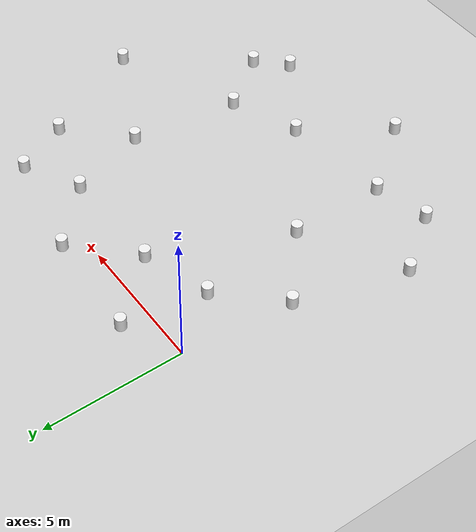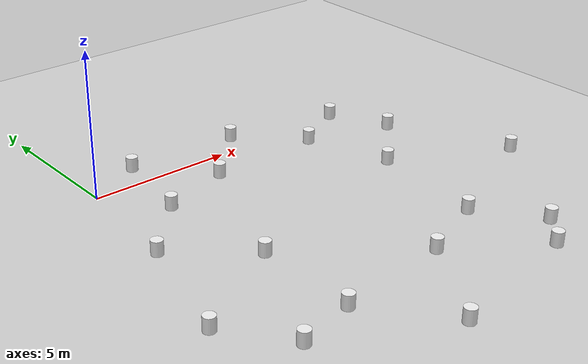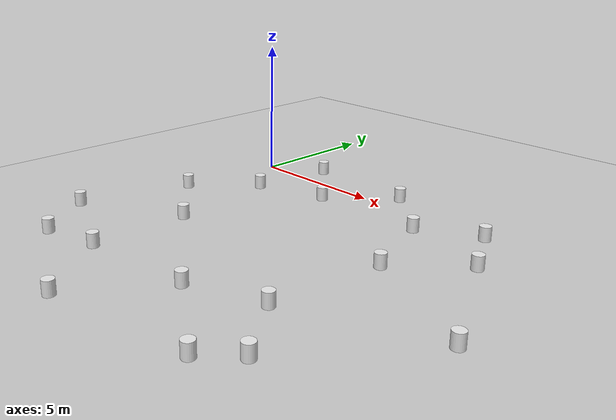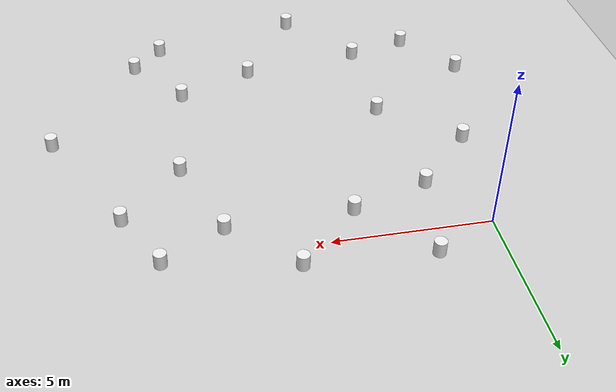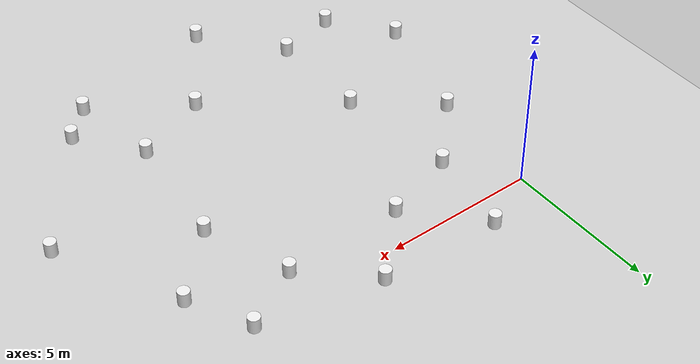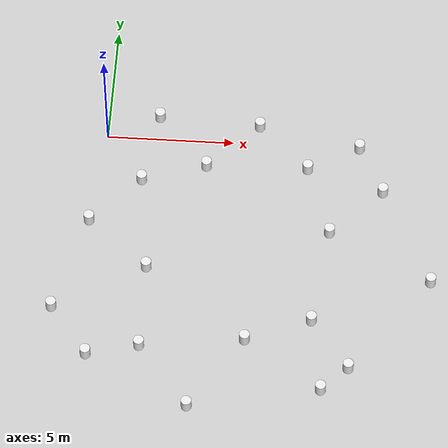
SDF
<?xml version="1.0"?>
<sdf version="1.6">
  <world name="default">

    <include>
      <uri>model://ground_plane</uri>
    </include>

    <include>
      <uri>model://sun</uri>
    </include>

    <scene>
      <shadows>false</shadows>
    </scene>

    <gui fullscreen='0'>
      <camera name='user_camera'>
        <pose frame=''>8 0 15 0 1.57 1.57</pose>
        <view_controller>orbit</view_controller>
        <projection_type>orthographic</projection_type>
      </camera>
    </gui>

    <physics type="ode">
      <real_time_update_rate>1000.0</real_time_update_rate>
      <max_step_size>0.001</max_step_size>
      <real_time_factor>1</real_time_factor>
      <ode>
        <solver>
          <type>quick</type>
          <iters>150</iters>
          <precon_iters>0</precon_iters>
          <sor>1.400000</sor>
          <use_dynamic_moi_rescaling>1</use_dynamic_moi_rescaling>
        </solver>
        <constraints>
          <cfm>0.00001</cfm>
          <erp>0.2</erp>
          <contact_max_correcting_vel>2000.000000</contact_max_correcting_vel>
          <contact_surface_layer>0.01000</contact_surface_layer>
        </constraints>
      </ode>
    </physics>

    <model name="turtlebot3_world">
      <static>1</static>
      <include>
        <uri>model://turtlebot3_world</uri>
      </include>
    </model>

  </world>
</sdf>

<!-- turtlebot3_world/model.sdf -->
<sdf version='1.5'>
    <!-- Draw Circle -->
    <model name='ros_symbol'>
      <static>1</static>
      <link name='symbol'>
        <collision name='c1'>
          <pose>2.0 1.0 0.25 0 0 0</pose>
          <geometry>
            <cylinder>
              <radius>0.2</radius>
              <length>0.5</length>
            </cylinder>
          </geometry>
          <max_contacts>10</max_contacts>
          <surface>
            <bounce/>
            <friction>
              <ode/>
            </friction>
            <contact>
              <ode/>
            </contact>
          </surface>
        </collision>

        <visual name='c1'>
          <pose>2.0 1.0 0.25 0 0 0</pose>
          <geometry>
            <cylinder>
              <radius>0.2</radius>
              <length>0.5</length>
            </cylinder>
          </geometry>
          <material>
            <script>
              <uri>file://media/materials/scripts/gazebo.material</uri>
              <name>Gazebo/White</name>
            </script>
          </material>
        </visual>

        <collision name='c2'>
          <pose>4.0 -1.2 0.25 0 0 0</pose>
          <geometry>
            <cylinder>
              <radius>0.2</radius>
              <length>0.5</length>
            </cylinder>
          </geometry>
          <max_contacts>10</max_contacts>
          <surface>
            <bounce/>
            <friction>
              <ode/>
            </friction>
            <contact>
              <ode/>
            </contact>
          </surface>
        </collision>

        <visual name='c2'>
          <pose>4.0 -1.2 0.25 0 0 0</pose>
          <geometry>
            <cylinder>
              <radius>0.2</radius>
              <length>0.5</length>
            </cylinder>
          </geometry>
          <material>
            <script>
              <uri>file://media/materials/scripts/gazebo.material</uri>
              <name>Gazebo/White</name>
            </script>
          </material>
        </visual>

        <collision name='c3'>
          <pose>6 0.8 0.25 0 0 0</pose>
          <geometry>
            <cylinder>
              <radius>0.2</radius>
              <length>0.5</length>
            </cylinder>
          </geometry>
          <max_contacts>10</max_contacts>
          <surface>
            <bounce/>
            <friction>
              <ode/>
            </friction>
            <contact>
              <ode/>
            </contact>
          </surface>
        </collision>

        <visual name='c3'>
          <pose>6 0.8 0.25 0 0 0</pose>
          <geometry>
            <cylinder>
              <radius>0.2</radius>
              <length>0.5</length>
            </cylinder>
          </geometry>
          <material>
            <script>
              <uri>file://media/materials/scripts/gazebo.material</uri>
              <name>Gazebo/White</name>
            </script>
          </material>
        </visual>

        <collision name='c4'>
          <pose>8 -1.1 0.25 0 0 0</pose>
          <geometry>
            <cylinder>
              <radius>0.2</radius>
              <length>0.5</length>
            </cylinder>
          </geometry>
          <max_contacts>10</max_contacts>
          <surface>
            <bounce/>
            <friction>
              <ode/>
            </friction>
            <contact>
              <ode/>
            </contact>
          </surface>
        </collision>

        <visual name='c4'>
          <pose>8 -1.1 0.25 0 0 0</pose>
          <geometry>
            <cylinder>
              <radius>0.2</radius>
              <length>0.5</length>
            </cylinder>
          </geometry>
          <material>
            <script>
              <uri>file://media/materials/scripts/gazebo.material</uri>
              <name>Gazebo/White</name>
            </script>
          </material>
        </visual>

        <collision name='c5'>
          <pose>10 0 0.25 0 0 0</pose>
          <geometry>
            <cylinder>
              <radius>0.2</radius>
              <length>0.5</length>
            </cylinder>
          </geometry>
          <max_contacts>10</max_contacts>
          <surface>
            <bounce/>
            <friction>
              <ode/>
            </friction>
            <contact>
              <ode/>
            </contact>
          </surface>
        </collision>

        <visual name='c5'>
          <pose>10 0 0.25 0 0 0</pose>
          <geometry>
            <cylinder>
              <radius>0.2</radius>
              <length>0.5</length>
            </cylinder>
          </geometry>
          <material>
            <script>
              <uri>file://media/materials/scripts/gazebo.material</uri>
              <name>Gazebo/White</name>
            </script>
          </material>
        </visual>

        <collision name='c7'>
          <pose>11 -2 0.25 0 0 0</pose>
          <geometry>
            <cylinder>
              <radius>0.2</radius>
              <length>0.5</length>
            </cylinder>
          </geometry>
          <max_contacts>10</max_contacts>
          <surface>
            <bounce/>
            <friction>
              <ode/>
            </friction>
            <contact>
              <ode/>
            </contact>
          </surface>
        </collision>

        <visual name='c7'>
          <pose>11 -2 0.25 0 0 0</pose>
          <geometry>
            <cylinder>
              <radius>0.2</radius>
              <length>0.5</length>
            </cylinder>
          </geometry>
          <material>
            <script>
              <uri>file://media/materials/scripts/gazebo.material</uri>
              <name>Gazebo/White</name>
            </script>
          </material>
        </visual>

        <collision name='c7_2'>
          <pose>9 -4 0.25 0 0 0</pose>
          <geometry>
            <cylinder>
              <radius>0.2</radius>
              <length>0.5</length>
            </cylinder>
          </geometry>
          <max_contacts>10</max_contacts>
          <surface>
            <bounce/>
            <friction>
              <ode/>
            </friction>
            <contact>
              <ode/>
            </contact>
          </surface>
        </collision>

        <visual name='c7_2'>
          <pose>9 -4 0.25 0 0 0</pose>
          <geometry>
            <cylinder>
              <radius>0.2</radius>
              <length>0.5</length>
            </cylinder>
          </geometry>
          <material>
            <script>
              <uri>file://media/materials/scripts/gazebo.material</uri>
              <name>Gazebo/White</name>
            </script>
          </material>
        </visual>

        <collision name='c8'>
          <pose>13 -6 0 0 0</pose>
          <geometry>
            <cylinder>
              <radius>0.2</radius>
              <length>0.5</length>
            </cylinder>
          </geometry>
          <max_contacts>10</max_contacts>
          <surface>
            <bounce/>
            <friction>
              <ode/>
            </friction>
            <contact>
              <ode/>
            </contact>
          </surface>
        </collision>

        <visual name='c8'>
          <pose>13 -6 0.25 0 0 0</pose>
          <geometry>
            <cylinder>
              <radius>0.2</radius>
              <length>0.5</length>
            </cylinder>
          </geometry>
          <material>
            <script>
              <uri>file://media/materials/scripts/gazebo.material</uri>
              <name>Gazebo/White</name>
            </script>
          </material>
        </visual>

        <collision name='c9'>
          <pose>8.5 -8 0 0 0</pose>
          <geometry>
            <cylinder>
              <radius>0.2</radius>
              <length>0.5</length>
            </cylinder>
          </geometry>
          <max_contacts>10</max_contacts>
          <surface>
            <bounce/>
            <friction>
              <ode/>
            </friction>
            <contact>
              <ode/>
            </contact>
          </surface>
        </collision>

        <visual name='c9'>
          <pose>8.5 -8 0.25 0 0 0</pose>
          <geometry>
            <cylinder>
              <radius>0.2</radius>
              <length>0.5</length>
            </cylinder>
          </geometry>
          <material>
            <script>
              <uri>file://media/materials/scripts/gazebo.material</uri>
              <name>Gazebo/White</name>
            </script>
          </material>
        </visual>

        <collision name='c10'>
          <pose>10 -10 0 0 0</pose>
          <geometry>
            <cylinder>
              <radius>0.2</radius>
              <length>0.5</length>
            </cylinder>
          </geometry>
          <max_contacts>10</max_contacts>
          <surface>
            <bounce/>
            <friction>
              <ode/>
            </friction>
            <contact>
              <ode/>
            </contact>
          </surface>
        </collision>

        <visual name='c10'>
          <pose>10 -10 0.25 0 0 0</pose>
          <geometry>
            <cylinder>
              <radius>0.2</radius>
              <length>0.5</length>
            </cylinder>
          </geometry>
          <material>
            <script>
              <uri>file://media/materials/scripts/gazebo.material</uri>
              <name>Gazebo/White</name>
            </script>
          </material>
        </visual>

        <collision name='c11'>
          <pose>8 -11 0 0 0</pose>
          <geometry>
            <cylinder>
              <radius>0.2</radius>
              <length>0.5</length>
            </cylinder>
          </geometry>
          <max_contacts>10</max_contacts>
          <surface>
            <bounce/>
            <friction>
              <ode/>
            </friction>
            <contact>
              <ode/>
            </contact>
          </surface>
        </collision>

        <visual name='c11'>
          <pose>9 -11 0.25 0 0 0</pose>
          <geometry>
            <cylinder>
              <radius>0.2</radius>
              <length>0.5</length>
            </cylinder>
          </geometry>
          <material>
            <script>
              <uri>file://media/materials/scripts/gazebo.material</uri>
              <name>Gazebo/White</name>
            </script>
          </material>
        </visual>

        <collision name='c12'>
          <pose>6 -9 0 0 0</pose>
          <geometry>
            <cylinder>
              <radius>0.2</radius>
              <length>0.5</length>
            </cylinder>
          </geometry>
          <max_contacts>10</max_contacts>
          <surface>
            <bounce/>
            <friction>
              <ode/>
            </friction>
            <contact>
              <ode/>
            </contact>
          </surface>
        </collision>

        <visual name='c12'>
          <pose>6 -9 0.25 0 0 0</pose>
          <geometry>
            <cylinder>
              <radius>0.2</radius>
              <length>0.5</length>
            </cylinder>
          </geometry>
          <material>
            <script>
              <uri>file://media/materials/scripts/gazebo.material</uri>
              <name>Gazebo/White</name>
            </script>
          </material>
        </visual>

        <collision name='c13'>
          <pose>4 -12 0 0 0</pose>
          <geometry>
            <cylinder>
              <radius>0.2</radius>
              <length>0.5</length>
            </cylinder>
          </geometry>
          <max_contacts>10</max_contacts>
          <surface>
            <bounce/>
            <friction>
              <ode/>
            </friction>
            <contact>
              <ode/>
            </contact>
          </surface>
        </collision>

        <visual name='c13'>
          <pose>4 -12 0.25 0 0 0</pose>
          <geometry>
            <cylinder>
              <radius>0.2</radius>
              <length>0.5</length>
            </cylinder>
          </geometry>
          <material>
            <script>
              <uri>file://media/materials/scripts/gazebo.material</uri>
              <name>Gazebo/White</name>
            </script>
          </material>
        </visual>

        <collision name='c14'>
          <pose>2 -9.5 0 0 0</pose>
          <geometry>
            <cylinder>
              <radius>0.2</radius>
              <length>0.5</length>
            </cylinder>
          </geometry>
          <max_contacts>10</max_contacts>
          <surface>
            <bounce/>
            <friction>
              <ode/>
            </friction>
            <contact>
              <ode/>
            </contact>
          </surface>
        </collision>

        <visual name='c14'>
          <pose>2 -9.5 0.25 0 0 0</pose>
          <geometry>
            <cylinder>
              <radius>0.2</radius>
              <length>0.5</length>
            </cylinder>
          </geometry>
          <material>
            <script>
              <uri>file://media/materials/scripts/gazebo.material</uri>
              <name>Gazebo/White</name>
            </script>
          </material>
        </visual>

        <collision name='c15'>
          <pose>0 -10 0 0 0</pose>
          <geometry>
            <cylinder>
              <radius>0.2</radius>
              <length>0.5</length>
            </cylinder>
          </geometry>
          <max_contacts>10</max_contacts>
          <surface>
            <bounce/>
            <friction>
              <ode/>
            </friction>
            <contact>
              <ode/>
            </contact>
          </surface>
        </collision>

        <visual name='c15'>
          <pose>0 -10 0.25 0 0 0</pose>
          <geometry>
            <cylinder>
              <radius>0.2</radius>
              <length>0.5</length>
            </cylinder>
          </geometry>
          <material>
            <script>
              <uri>file://media/materials/scripts/gazebo.material</uri>
              <name>Gazebo/White</name>
            </script>
          </material>
        </visual>

        <collision name='c16'>
          <pose>-1.5 -8 0 0 0</pose>
          <geometry>
            <cylinder>
              <radius>0.2</radius>
              <length>0.5</length>
            </cylinder>
          </geometry>
          <max_contacts>10</max_contacts>
          <surface>
            <bounce/>
            <friction>
              <ode/>
            </friction>
            <contact>
              <ode/>
            </contact>
          </surface>
        </collision>

        <visual name='c16'>
          <pose>-1.5 -8 0.25 0 0 0</pose>
          <geometry>
            <cylinder>
              <radius>0.2</radius>
              <length>0.5</length>
            </cylinder>
          </geometry>
          <material>
            <script>
              <uri>file://media/materials/scripts/gazebo.material</uri>
              <name>Gazebo/White</name>
            </script>
          </material>
        </visual>

        <collision name='c17'>
          <pose>2 -6 0 0 0</pose>
          <geometry>
            <cylinder>
              <radius>0.2</radius>
              <length>0.5</length>
            </cylinder>
          </geometry>
          <max_contacts>10</max_contacts>
          <surface>
            <bounce/>
            <friction>
              <ode/>
            </friction>
            <contact>
              <ode/>
            </contact>
          </surface>
        </collision>

        <visual name='c17'>
          <pose>2 -6 0.25 0 0 0</pose>
          <geometry>
            <cylinder>
              <radius>0.2</radius>
              <length>0.5</length>
            </cylinder>
          </geometry>
          <material>
            <script>
              <uri>file://media/materials/scripts/gazebo.material</uri>
              <name>Gazebo/White</name>
            </script>
          </material>
        </visual>

        <collision name='c18'>
          <pose>-0.4 -4 0 0 0</pose>
          <geometry>
            <cylinder>
              <radius>0.2</radius>
              <length>0.5</length>
            </cylinder>
          </geometry>
          <max_contacts>10</max_contacts>
          <surface>
            <bounce/>
            <friction>
              <ode/>
            </friction>
            <contact>
              <ode/>
            </contact>
          </surface>
        </collision>

        <visual name='c18'>
          <pose>-0.4 -4 0.25 0 0 0</pose>
          <geometry>
            <cylinder>
              <radius>0.2</radius>
              <length>0.5</length>
            </cylinder>
          </geometry>
          <material>
            <script>
              <uri>file://media/materials/scripts/gazebo.material</uri>
              <name>Gazebo/White</name>
            </script>
          </material>
        </visual>

        <collision name='c19'>
          <pose>1.5 -2 0 0 0</pose>
          <geometry>
            <cylinder>
              <radius>0.2</radius>
              <length>0.5</length>
            </cylinder>
          </geometry>
          <max_contacts>10</max_contacts>
          <surface>
            <bounce/>
            <friction>
              <ode/>
            </friction>
            <contact>
              <ode/>
            </contact>
          </surface>
        </collision>

        <visual name='c19'>
          <pose>1.5 -2 0.25 0 0 0</pose>
          <geometry>
            <cylinder>
              <radius>0.2</radius>
              <length>0.5</length>
            </cylinder>
          </geometry>
          <material>
            <script>
              <uri>file://media/materials/scripts/gazebo.material</uri>
              <name>Gazebo/White</name>
            </script>
          </material>
        </visual>

    </link>
  </model>
</sdf>
